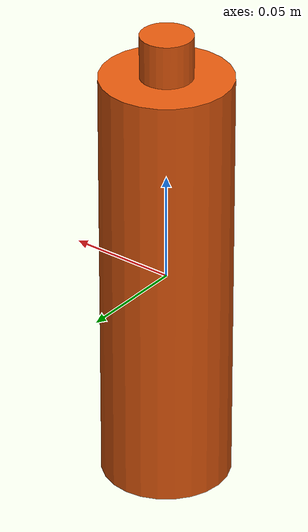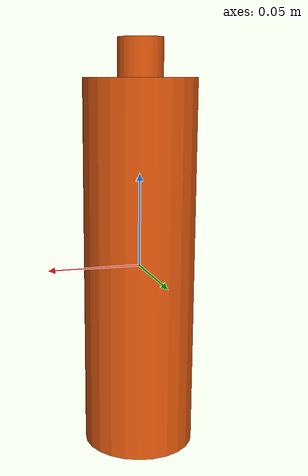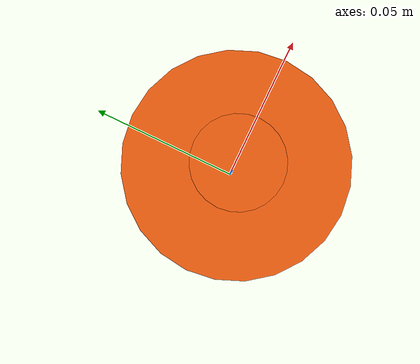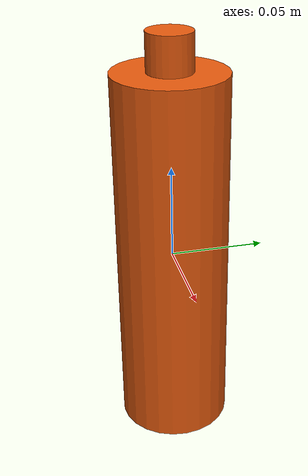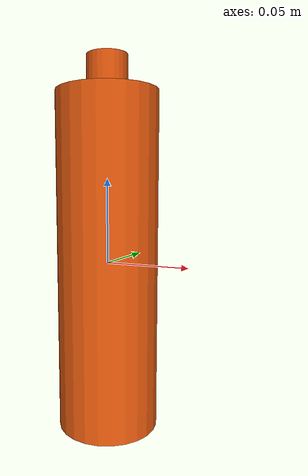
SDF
<?xml version="1.0"?>
<sdf version="1.9">
  <model name="bottle">
    <link name="link">
      <inertial>
        <mass>0.15</mass>
        <inertia>
          <ixx>5.34e-4</ixx><iyy>5.34e-4</iyy><izz>6.75e-5</izz>
          <ixy>0</ixy><ixz>0</ixz><iyz>0</iyz>
        </inertia>
      </inertial>
      <collision name="col">
        <geometry><cylinder><radius>0.03</radius><length>0.20</length></cylinder></geometry>
        <surface>
          <friction><ode><mu>1.2</mu><mu2>1.2</mu2></ode></friction>
        </surface>
      </collision>
      <visual name="body">
        <geometry><cylinder><radius>0.03</radius><length>0.20</length></cylinder></geometry>
        <material>
          <ambient>0.9 0.35 0.05 1</ambient>
          <diffuse>0.9 0.35 0.05 1</diffuse>
          <specular>0.3 0.3 0.3 1</specular>
        </material>
      </visual>
      <visual name="cap">
        <pose>0 0 0.11 0 0 0</pose>
        <geometry><cylinder><radius>0.012</radius><length>0.02</length></cylinder></geometry>
        <material>
          <ambient>0.9 0.35 0.05 1</ambient>
          <diffuse>0.9 0.35 0.05 1</diffuse>
        </material>
      </visual>
    </link>
  </model>
</sdf>
